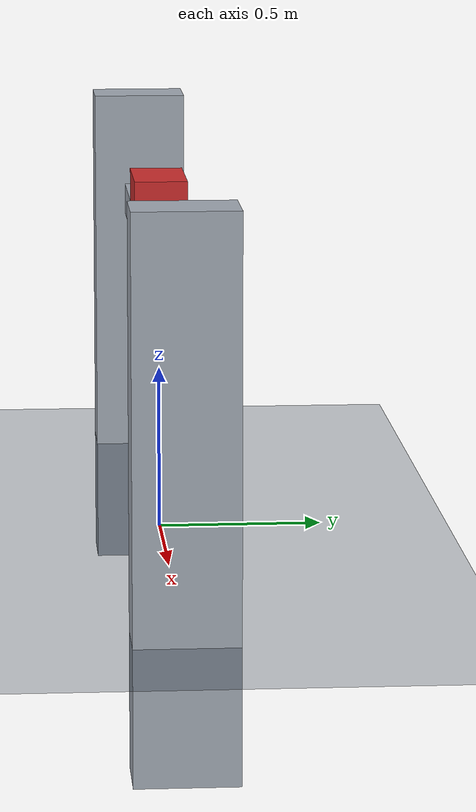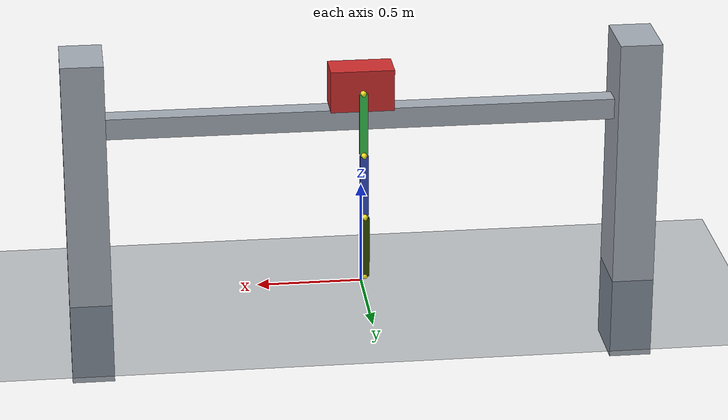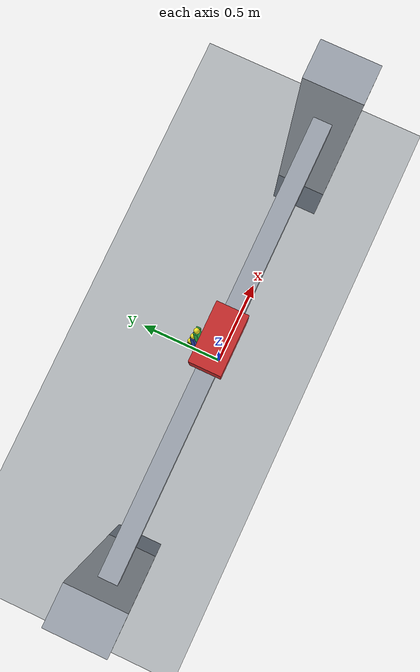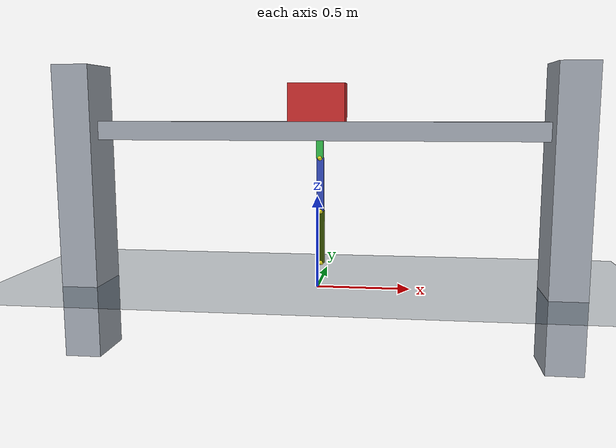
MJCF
<mujoco model="cartpole_triple_control">
  <compiler angle="radian" autolimits="true" inertiafromgeom="false" />
  <option timestep="0.005" gravity="0 0 -9.81" integrator="RK4" />
  <default>
    <geom contype="0" conaffinity="0" />
    <joint damping="0.0" />
  </default>
  <visual>
    <headlight diffuse="0.7 0.7 0.7" ambient="0.3 0.3 0.3" specular="0.1 0.1 0.1" />
    <rgba haze="0.15 0.2 0.25 1" />
  </visual>
  <asset>
    <material name="floor_mat" rgba="0.16 0.22 0.28 1" />
    <material name="metal_mat" rgba="0.65 0.68 0.72 1" />
    <material name="cart_mat" rgba="0.82 0.18 0.18 1" />
    <material name="pole1_mat" rgba="0.2 0.75 0.3 1" />
    <material name="pole2_mat" rgba="0.2 0.3 0.75 1" />
    <material name="pole3_mat" rgba="0.2 0.3 0 1" />
    <material name="site_mat" rgba="0.95 0.9 0.15 0.9" />
  </asset>
  <worldbody>
    <light diffuse="0.7 0.7 0.7" pos="0 0 3.5" dir="0 0 -1" />
    <geom name="floor" type="plane" size="5 5 0.1" material="floor_mat" />
    <body name="frame">
      <geom name="tower_left" type="box" pos="-1.3 0 0.4" size="0.1 0.15 0.8" material="metal_mat" />
      <geom name="tower_right" type="box" pos="1.3 0 0.4" size="0.1 0.15 0.8" material="metal_mat" />
      <geom name="rail" type="box" pos="0 0 0.85" size="1.3 0.05 0.05" material="metal_mat" />
    </body>
    <body name="cart" pos="0 0 1">
      <joint name="cart_slide" type="slide" axis="1 0 0" range="-1 1" damping="0.1" frictionloss="0" />
      <inertial pos="0 0 0" mass="2" diaginertia="0.0333 0.0333 0.0333" />
      <geom name="cart_geom" type="box" size="0.15 0.08 0.1" mass="2.0" material="cart_mat" />
      <site name="cart_center_site" pos="0 0 0" size="0.02" type="sphere" material="site_mat" />
      <body name="pole1" pos="0 0.11 0" quat="6.12323399574e-17 0 -1 0">
        <joint name="pole1_hinge" type="hinge" axis="0 -1 0" damping="0.03" frictionloss="0" ref="3.1415926535897931" limited="false" />
        <inertial pos="0 0 0.15" mass="0.5" diaginertia="0.00376666666667 0.00381666666667 8.33333333333e-05" />
        <site name="pole1_hinge_site" pos="0 0 0" size="0.015" type="sphere" material="site_mat" />
        <geom name="pole1_geom" type="box" pos="0 0 0.15" size="0.02 0.01 0.15" mass="0.5" material="pole1_mat" />
        <site name="pole1_tip_site" pos="0 0 0.3" size="0.015" type="sphere" material="site_mat" />
        <body name="pole2" pos="0 0.03 0.3" quat="1 0 -0 0">
          <joint name="pole2_hinge" type="hinge" axis="0 -1 0" damping="0.03" frictionloss="0" ref="0" limited="false" />
          <inertial pos="0 0 0.15" mass="0.5" diaginertia="0.00376666666667 0.00381666666667 8.33333333333e-05" />
          <site name="pole2_hinge_site" pos="0 0 0" size="0.015" type="sphere" material="site_mat" />
          <geom name="pole2_geom" type="box" pos="0 0 0.15" size="0.02 0.01 0.15" mass="0.5" material="pole2_mat" />
          <site name="pole2_tip_site" pos="0 0 0.3" size="0.015" type="sphere" material="site_mat" />
          <body name="pole3" pos="0 0.03 0.3" quat="1 0 -0 0">
            <joint name="pole3_hinge" type="hinge" axis="0 -1 0" damping="0.03" frictionloss="0" ref="0" limited="false" />
            <inertial pos="0 0 0.15" mass="0.5" diaginertia="0.00376666666667 0.00381666666667 8.33333333333e-05" />
            <site name="pole3_hinge_site" pos="0 0 0" size="0.015" type="sphere" material="site_mat" />
            <geom name="pole3_geom" type="box" pos="0 0 0.15" size="0.02 0.01 0.15" mass="0.5" material="pole3_mat" />
            <site name="pole3_tip_site" pos="0 0 0.3" size="0.015" type="sphere" material="site_mat" />
          </body>
        </body>
      </body>
    </body>
  </worldbody>
  <sensor>
    <jointpos name="cart_position" joint="cart_slide" />
    <jointpos name="pole1_relative_angle" joint="pole1_hinge" />
    <jointpos name="pole2_relative_angle" joint="pole2_hinge" />
    <jointpos name="pole3_relative_angle" joint="pole3_hinge" />
    <jointvel name="cart_velocity" joint="cart_slide" />
    <jointvel name="pole1_relative_velocity" joint="pole1_hinge" />
    <jointvel name="pole2_relative_velocity" joint="pole2_hinge" />
    <jointvel name="pole3_relative_velocity" joint="pole3_hinge" />
  </sensor>
  <actuator>
    <motor name="cart_motor" joint="cart_slide" gear="1" ctrlrange="-20 20" forcerange="-20 20" />
  </actuator>
</mujoco>
